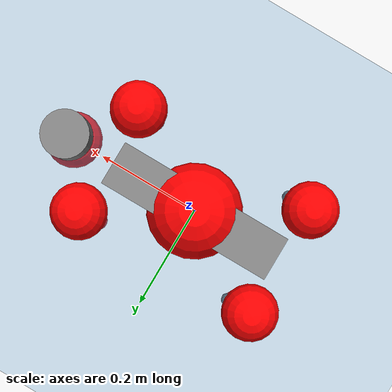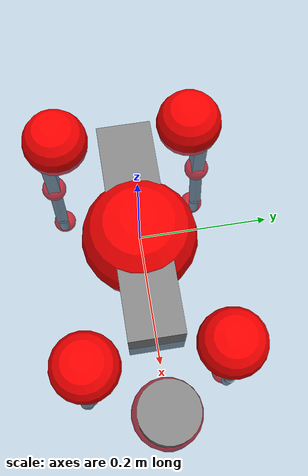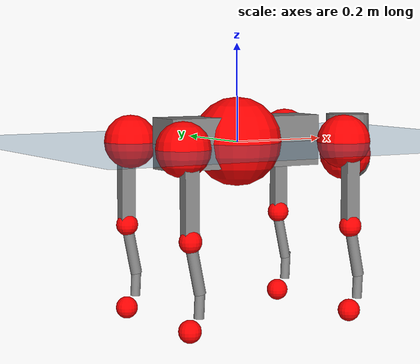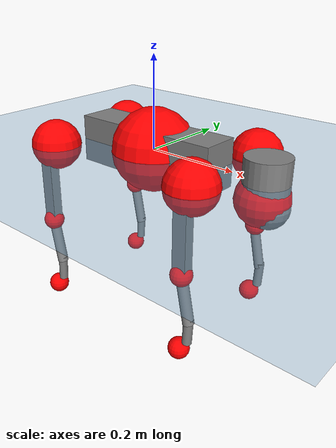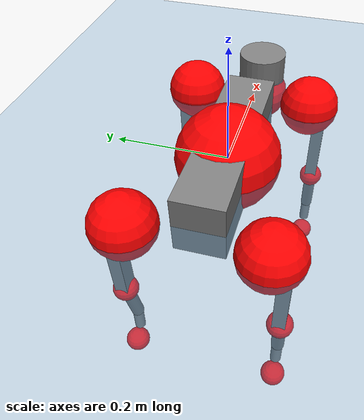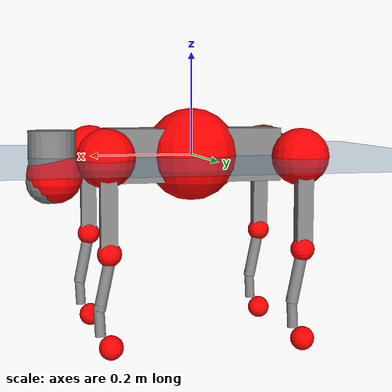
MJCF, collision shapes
<mujoco model="go2">
  <compiler angle="radian" assetdir="assets" balanceinertia="true" inertiafromgeom="false"/>

  <option timestep="0.005" density="1.2" viscosity="2e-05"/>

  <size nkey="1"/>

  <visual>
    <quality shadowsize="8192"/>
    <map shadowclip="0.5"/>
  </visual>

  <default>
    <default class="/">
      <geom contype="0" conaffinity="0" group="1" solref="-1000 -80"/>
      <site size="0.01 0.005 0.005" group="5"/>
      <general forcelimited="true" biastype="affine" gainprm="20" biasprm="0 -20 -0.5"/>
      <default class="go2">
        <joint armature="0.01" damping="0.01" frictionloss="0.2"/>
        <geom condim="1" margin="0.001"/>
        <default class="visual">
          <geom type="mesh" group="2"/>
        </default>
        <default class="collision">
          <geom group="3"/>
          <default class="foot">
            <geom size="0.022 0 0" condim="6" priority="1" friction="0.8 0.02 0.01" solimp="0.015 1 0.022"/>
          </default>
        </default>
        <default class="reward_collision_sphere">
          <geom group="5" rgba="1 0 0 1"/>
        </default>
      </default>
    </default>
  </default>

  <asset>
    <texture type="skybox" colorspace="auto" name="//unnamed_texture_0" builtin="gradient" rgb1="0.95 0.95 0.95" rgb2="0.95 0.95 0.95" width="100" height="600"/>
    <texture type="2d" colorspace="auto" name="texplane" builtin="checker" rgb1="0.345 0.575 0.748" rgb2="0.345 0.575 0.748" markrgb="1 1 1" width="512" height="512"/>
    <material name="MatPlane" class="/" texture="texplane" texuniform="true" texrepeat="2 2" specular="0.9"/>
    <material name="metal" class="/" rgba="0.9 0.95 0.95 1"/>
    <material name="black" class="/" rgba="0 0 0 1"/>
    <material name="white" class="/"/>
    <material name="gray" class="/" rgba="0.671705 0.692426 0.77427 1"/>
    <mesh name="base_0" class="/" file="base_0.obj"/>
    <mesh name="base_1" class="/" file="base_1.obj"/>
    <mesh name="base_2" class="/" file="base_2.obj"/>
    <mesh name="base_3" class="/" file="base_3.obj"/>
    <mesh name="base_4" class="/" file="base_4.obj"/>
    <mesh name="hip_0" class="/" file="hip_0.obj"/>
    <mesh name="hip_1" class="/" file="hip_1.obj"/>
    <mesh name="thigh_0" class="/" file="thigh_0.obj"/>
    <mesh name="thigh_1" class="/" file="thigh_1.obj"/>
    <mesh name="thigh_mirror_0" class="/" file="thigh_mirror_0.obj"/>
    <mesh name="thigh_mirror_1" class="/" file="thigh_mirror_1.obj"/>
    <mesh name="calf_0" class="/" file="calf_0.obj"/>
    <mesh name="calf_1" class="/" file="calf_1.obj"/>
    <mesh name="calf_mirror_0" class="/" file="calf_mirror_0.obj"/>
    <mesh name="calf_mirror_1" class="/" file="calf_mirror_1.obj"/>
    <mesh name="foot" class="/" file="foot.obj"/>
  </asset>

  <worldbody>
    <geom name="floor" class="/" size="100 100 0.125" type="plane" group="0" material="MatPlane"/>
    <light name="toplight_shadow" class="/" pos="0 0 5" dir="0.0990148 0.0990148 -0.990148" type="directional" ambient="0.04 0.04 0.04" diffuse="0.55 0.55 0.55" specular="0.12 0.12 0.12"/>
    <light name="toplight_fill" class="/" pos="0 0 5" dir="0.0990148 0.0990148 -0.990148" type="directional" castshadow="false" ambient="0.04 0.04 0.04" diffuse="0.3 0.3 0.3" specular="0.08 0.08 0.08"/>
    <body name="trunk" childclass="go2" pos="-0.00014265 2.38863e-05 0.00079406" quat="1 5.71236e-06 2.73637e-05 1.04716e-05">
      <inertial pos="0.0206454 6.65272e-05 -0.00508924" quat="-0.000802069 0.712999 -0.00147607 0.701163" mass="5.14395" diaginertia="0.0868954 0.0780221 0.00870401"/>
      <joint name="//unnamed_joint_0" type="free" armature="0" damping="0" frictionloss="0"/>
      <geom name="//unnamed_geom_1" class="visual" material="black" mesh="base_0"/>
      <geom name="//unnamed_geom_2" class="visual" material="black" mesh="base_1"/>
      <geom name="//unnamed_geom_3" class="visual" material="black" mesh="base_2"/>
      <geom name="//unnamed_geom_4" class="visual" material="white" mesh="base_3"/>
      <geom name="//unnamed_geom_5" class="visual" material="gray" mesh="base_4"/>
      <geom name="trunk_1" class="collision" size="0.171217 0.042554 0.051884" type="box"/>
      <geom name="trunk_2" class="collision" size="0.0455123 0.0409611" pos="0.273937 0 0.00813744" type="cylinder"/>
      <geom name="trunk_3" class="collision" size="0.0427816" pos="0.281626 0 -0.0488246"/>
      <geom name="//unnamed_geom_9" class="reward_collision_sphere" size="0.0910246"/>
      <geom name="//unnamed_geom_10" class="reward_collision_sphere" size="0.0546148" pos="0.269131 0 -0.0366185"/>
      <site name="imu" pos="-0.0288666 -0.00146154 0.0345441" size="0.00910246"/>
      <camera name="track" pos="0 -1.91163 0" quat="0.707107 0.707107 0 0" mode="trackcom"/>
      <camera name="ego_camera" pos="0.299888 0 0.0366185" quat="-0.5 -0.5 0.5 0.5"/>
      <body name="FL_hip" pos="0.186147 0.044315 0.00224491" quat="1 3.76543e-05 3.41153e-06 0.000110612">
        <inertial pos="-0.00492184 0.00261371 9.64073e-05" quat="0.493706 0.502402 0.505319 0.498497" mass="0.511286" diaginertia="0.000723772 0.000475532 0.00017171"/>
        <joint name="FL_hip_joint" pos="0 0 0" axis="0.999993 6.08207e-05 -0.00369118" range="-1.0446 1.03105" armature="0.00933808" damping="0.00168135" frictionloss="0.17774"/>
        <geom name="//unnamed_geom_11" class="visual" material="metal" mesh="hip_0"/>
        <geom name="//unnamed_geom_12" class="visual" material="gray" mesh="hip_1"/>
        <geom name="//unnamed_geom_13" class="collision" size="0.0418713 0.0182049" pos="0 0.0764651 0" quat="0.707107 0.707107 0 0" type="cylinder"/>
        <geom name="//unnamed_geom_14" class="reward_collision_sphere" size="0.0546148" pos="0 0.0669069 0"/>
        <body name="FL_thigh" pos="-0.00026638 0.0902396 0.00172131" quat="1 0.00028124 -7.54006e-05 -8.92677e-05">
          <inertial pos="-0.00443348 -0.0213061 -0.0263567" quat="0.828949 0.0853318 -0.0194708 0.552434" mass="0.855668" diaginertia="0.00484818 0.00464268 0.000310535"/>
          <joint name="FL_thigh_joint" pos="0 0 0" axis="0.000418981 1 0.000655315" stiffness="0.00292441" range="-1.57675 3.50004" armature="0.00929575" damping="0.00633934" frictionloss="0.181733"/>
          <geom name="//unnamed_geom_15" class="visual" material="metal" mesh="thigh_0"/>
          <geom name="//unnamed_geom_16" class="visual" material="gray" mesh="thigh_1"/>
          <geom name="//unnamed_geom_17" class="collision" size="0.0969412 0.0111505 0.0154742" pos="0 0 -0.0866637" quat="0.707107 0 0.707107 0" type="box"/>
          <body name="FL_calf" pos="-0.0013711 -0.000961718 -0.174066" quat="1 -5.33146e-05 2.25446e-05 -0.000297068">
            <inertial pos="0.00578121 -0.000297169 -0.114735" quat="0.711478 0.000319263 -0.00393686 0.702698" mass="0.184602" diaginertia="0.00123694 0.00116932 1.90543e-05"/>
            <joint name="FL_calf_joint" pos="0 0 0" axis="0.00513983 0.999979 0.00388975" stiffness="0.00252939" range="-2.70672 -0.845154" armature="0.00866716" damping="0.00325314" frictionloss="0.174004"/>
            <geom name="//unnamed_geom_18" class="visual" material="gray" mesh="calf_0"/>
            <geom name="//unnamed_geom_19" class="visual" material="black" mesh="calf_1"/>
            <geom name="FL_calf0" class="collision" size="0.010923 0.0546148" pos="0.00768945 0 -0.0488246" quat="0.994493 0 -0.104807 0" type="cylinder"/>
            <geom name="//unnamed_geom_21" class="collision" size="0.0100127 0.029583" pos="0.0192236 0 -0.120434" quat="0.999688 0 0.0249974 0" type="cylinder"/>
            <geom name="//unnamed_geom_22" class="visual" pos="0 0 -0.173327" quat="1 0 0 0" material="black" mesh="foot"/>
            <geom name="FL_foot" class="foot" size="0.0176375" pos="-0.00192236 0 -0.173327"/>
            <geom name="//unnamed_geom_24" class="reward_collision_sphere" size="0.0227562"/>
            <geom name="//unnamed_geom_25" class="reward_collision_sphere" size="0.0227562" pos="-0.00192236 0 -0.173327"/>
            <site name="FL_foot" class="foot" pos="-0.00192236 0 -0.173327" size="0.00910246"/>
          </body>
        </body>
      </body>
      <body name="FR_hip" pos="0.187362 -0.0436215 8.76633e-05" quat="1 1.66991e-05 -1.77408e-05 1.42624e-06">
        <inertial pos="-0.00502881 -0.00169169 -0.000526727" quat="0.498612 0.505278 0.498519 0.497553" mass="0.50309" diaginertia="0.000722585 0.000464734 0.000169482"/>
        <joint name="FR_hip_joint" pos="0 0 0" axis="0.999997 -0.00161509 -0.00162218" stiffness="0.00280059" range="-1.0521 1.05533" armature="0.00914325" damping="0.0144534" frictionloss="0.181538"/>
        <geom name="//unnamed_geom_26" class="visual" pos="0 1.23765e-09 5.30853e-08" quat="4.63268e-05 1 0 0" material="metal" mesh="hip_0"/>
        <geom name="//unnamed_geom_27" class="visual" pos="0 2.00638e-09 -1.313e-07" quat="4.63268e-05 1 0 0" material="gray" mesh="hip_1"/>
        <geom name="//unnamed_geom_28" class="collision" size="0.0418713 0.0182049" pos="0 -0.0764651 0" quat="0.707107 0.707107 0 0" type="cylinder"/>
        <geom name="//unnamed_geom_29" class="reward_collision_sphere" size="0.0546148" pos="0 -0.0669069 0"/>
        <body name="FR_thigh" pos="0.000988909 -0.0906978 0.00101942" quat="1 -1.66844e-05 -0.00023849 -9.70023e-05">
          <inertial pos="-0.00344994 0.0217268 -0.0263843" quat="0.551476 -0.0203411 0.0851671 0.829583" mass="0.870263" diaginertia="0.00490964 0.00464104 0.000313014"/>
          <joint name="FR_thigh_joint" pos="0 0 0" axis="-6.67566e-05 -1 0.000130536" range="-3.47592 1.55394" armature="0.00913743" damping="0.00985414" frictionloss="0.193299"/>
          <geom name="//unnamed_geom_30" class="visual" material="metal" mesh="thigh_mirror_0"/>
          <geom name="//unnamed_geom_31" class="visual" material="gray" mesh="thigh_mirror_1"/>
          <geom name="//unnamed_geom_32" class="collision" size="0.0969412 0.0111505 0.0154742" pos="0 0 -0.0866637" quat="0.707107 0 0.707107 0" type="box"/>
          <body name="FR_calf" pos="-6.73753e-05 -0.000677979 -0.173008" quat="1 -5.24502e-05 7.02461e-05 8.57062e-05">
            <inertial pos="0.00599599 0.00106462 -0.115063" quat="0.70129 -0.00765947 0.00040509 0.712835" mass="0.180908" diaginertia="0.00120936 0.00117203 1.886e-05"/>
            <joint name="FR_calf_joint" pos="0 0 0" axis="0.00218346 -0.999997 0.00130817" range="0.854197 2.70546" armature="0.00909491" damping="0.00977541" frictionloss="0.176429"/>
            <geom name="//unnamed_geom_33" class="visual" material="gray" mesh="calf_mirror_0"/>
            <geom name="//unnamed_geom_34" class="visual" material="black" mesh="calf_mirror_1"/>
            <geom name="FR_calf0" class="collision" size="0.0118332 0.0546148" pos="0.00961181 0 -0.0488246" quat="0.995004 0 -0.0998334 0" type="cylinder"/>
            <geom name="//unnamed_geom_36" class="collision" size="0.0100127 0.029583" pos="0.0192236 0 -0.120434" quat="0.999688 0 0.0249974 0" type="cylinder"/>
            <geom name="//unnamed_geom_37" class="visual" pos="0 0 -0.173327" quat="1 0 0 0" material="black" mesh="foot"/>
            <geom name="FR_foot" class="foot" size="0.0203173" pos="-0.00192236 0 -0.173327"/>
            <geom name="//unnamed_geom_39" class="reward_collision_sphere" size="0.0227562"/>
            <geom name="//unnamed_geom_40" class="reward_collision_sphere" size="0.0227562" pos="-0.00192236 0 -0.173327"/>
            <site name="FR_foot" class="foot" pos="-0.00192236 0 -0.173327" size="0.00910246"/>
          </body>
        </body>
      </body>
      <body name="RL_hip" pos="-0.186745 0.0439725 -0.000363048" quat="1 4.58225e-05 0.000171117 -5.47419e-05">
        <inertial pos="0.00453443 0.0025197 -0.000248835" quat="0.503643 0.501564 0.494623 0.500126" mass="0.508413" diaginertia="0.000728095 0.000480534 0.000171595"/>
        <joint name="RL_hip_joint" pos="0 0 0" axis="-0.999791 -0.0204532 -0.00062283" stiffness="0.000269301" range="-1.05306 1.02186" armature="0.0090414" damping="0.0155419" frictionloss="0.184137"/>
        <geom name="//unnamed_geom_41" class="visual" pos="-1.28441e-09 0 -2.51774e-07" quat="4.63268e-05 0 1 0" material="metal" mesh="hip_0"/>
        <geom name="//unnamed_geom_42" class="visual" pos="-2.08218e-09 0 -2.23287e-07" quat="4.63268e-05 0 1 0" material="gray" mesh="hip_1"/>
        <geom name="//unnamed_geom_43" class="collision" size="0.0418713 0.0182049" pos="0 0.0764651 0" quat="0.707107 0.707107 0 0" type="cylinder"/>
        <geom name="//unnamed_geom_44" class="reward_collision_sphere" size="0.0546148" pos="0 0.0669069 0"/>
        <body name="RL_thigh" pos="0.000890454 0.0899889 -0.000966041" quat="1 1.06163e-05 7.16958e-07 8.59035e-06">
          <inertial pos="-0.00342946 -0.0214625 -0.0268965" quat="0.829798 0.0853978 -0.0193409 0.551152" mass="0.868386" diaginertia="0.00488343 0.00471538 0.000314176"/>
          <joint name="RL_thigh_joint" pos="0 0 0" axis="-0.00243914 0.999997 -0.000685186" range="-0.519736 4.53467" armature="0.00947598" damping="0.0115191" frictionloss="0.180272"/>
          <geom name="//unnamed_geom_45" class="visual" material="metal" mesh="thigh_0"/>
          <geom name="//unnamed_geom_46" class="visual" material="gray" mesh="thigh_1"/>
          <geom name="//unnamed_geom_47" class="collision" size="0.0969412 0.0111505 0.0154742" pos="0 0 -0.0866637" quat="0.707107 0 0.707107 0" type="box"/>
          <body name="RL_calf" pos="0.00122206 0.000355898 -0.173085" quat="1 3.30365e-05 0.000277658 1.81776e-05">
            <inertial pos="0.00605042 -0.000575252 -0.11474" quat="0.708161 -0.00280769 -0.00301545 0.706039" mass="0.182226" diaginertia="0.00121844 0.00117031 1.8757e-05"/>
            <joint name="RL_calf_joint" pos="0 0 0" axis="-0.000978416 0.999934 -0.0114743" stiffness="0.00079081" range="-2.7185 -0.835392" armature="0.00934974" damping="0.00293202" frictionloss="0.174262"/>
            <geom name="//unnamed_geom_48" class="visual" material="gray" mesh="calf_0"/>
            <geom name="//unnamed_geom_49" class="visual" material="black" mesh="calf_1"/>
            <geom name="RL_calf0" class="collision" size="0.0118332 0.0546148" pos="0.00961181 0 -0.0488246" quat="0.995004 0 -0.0998334 0" type="cylinder"/>
            <geom name="//unnamed_geom_51" class="collision" size="0.0100127 0.029583" pos="0.0192236 0 -0.120434" quat="0.999688 0 0.0249974 0" type="cylinder"/>
            <geom name="//unnamed_geom_52" class="visual" pos="0 0 -0.173327" quat="1 0 0 0" material="black" mesh="foot"/>
            <geom name="RL_foot" class="foot" size="0.0182153" pos="-0.00192236 0 -0.173327"/>
            <geom name="//unnamed_geom_54" class="reward_collision_sphere" size="0.0227562"/>
            <geom name="//unnamed_geom_55" class="reward_collision_sphere" size="0.0227562" pos="-0.00192236 0 -0.173327"/>
            <site name="RL_foot" class="foot" pos="-0.00192236 0 -0.173327" size="0.00910246"/>
          </body>
        </body>
      </body>
      <body name="RR_hip" pos="-0.186058 -0.0457115 -0.00179124" quat="1 0.000115391 0.000133897 9.3038e-05">
        <inertial pos="0.00474264 -0.00192125 -9.44487e-05" quat="0.500149 0.49605 0.49797 0.505778" mass="0.516739" diaginertia="0.000733176 0.00048001 0.000171588"/>
        <joint name="RR_hip_joint" pos="0 0 0" axis="-0.999999 0.00100638 -0.000648628" stiffness="0.00254998" range="-1.0419 1.06415" armature="0.00911442" damping="0.00633614" frictionloss="0.180889"/>
        <geom name="//unnamed_geom_56" class="visual" pos="1.28422e-09 1.23765e-09 -3.04859e-07" quat="2.14617e-09 4.63268e-05 4.63268e-05 -1" material="metal" mesh="hip_0"/>
        <geom name="//unnamed_geom_57" class="visual" pos="2.08264e-09 2.00638e-09 -9.19872e-08" quat="2.14617e-09 4.63268e-05 4.63268e-05 -1" material="gray" mesh="hip_1"/>
        <geom name="//unnamed_geom_58" class="collision" size="0.0418713 0.0182049" pos="0 -0.0764651 0" quat="0.707107 0.707107 0 0" type="cylinder"/>
        <geom name="//unnamed_geom_59" class="reward_collision_sphere" size="0.0546148" pos="0 -0.0669069 0"/>
        <body name="RR_thigh" pos="0.000353788 -0.0911 -0.000762858" quat="1 -0.000204131 -0.000180934 0.000205285">
          <inertial pos="-0.0042263 0.0209765 -0.0261778" quat="0.551486 -0.0203346 0.0845845 0.829636" mass="0.850012" diaginertia="0.00482627 0.00458801 0.000311295"/>
          <joint name="RR_thigh_joint" pos="0 0 0" axis="0.000599703 -0.999983 -0.00580253" range="-4.54343 0.52136" armature="0.00930933" damping="0.0171497" frictionloss="0.182125"/>
          <geom name="//unnamed_geom_60" class="visual" material="metal" mesh="thigh_mirror_0"/>
          <geom name="//unnamed_geom_61" class="visual" material="gray" mesh="thigh_mirror_1"/>
          <geom name="//unnamed_geom_62" class="collision" size="0.0969412 0.0111505 0.0154742" pos="0 0 -0.0866637" quat="0.707107 0 0.707107 0" type="box"/>
          <body name="RR_calf" pos="0.000498126 -0.00116385 -0.174063" quat="1 -0.000454822 -0.000139929 -0.000116044">
            <inertial pos="0.00633619 0.000674676 -0.115593" quat="0.703421 -0.00339041 0.00132169 0.710764" mass="0.181765" diaginertia="0.00123267 0.00115962 1.88516e-05"/>
            <joint name="RR_calf_joint" pos="0 0 0" axis="-0.00194302 -0.999992 -0.00341681" range="0.82815 2.72336" armature="0.00880547" damping="0.00763632" frictionloss="0.182059"/>
            <geom name="//unnamed_geom_63" class="visual" material="gray" mesh="calf_mirror_0"/>
            <geom name="//unnamed_geom_64" class="visual" material="black" mesh="calf_mirror_1"/>
            <geom name="RR_calf0" class="collision" size="0.0118332 0.0546148" pos="0.00961181 0 -0.0488246" quat="0.995004 0 -0.0998334 0" type="cylinder"/>
            <geom name="//unnamed_geom_66" class="collision" size="0.0100127 0.029583" pos="0.0192236 0 -0.120434" quat="0.999688 0 0.0249974 0" type="cylinder"/>
            <geom name="//unnamed_geom_67" class="visual" pos="0 0 -0.173327" quat="1 0 0 0" material="black" mesh="foot"/>
            <geom name="RR_foot" class="foot" size="0.021968" pos="-0.00192236 0 -0.173327"/>
            <geom name="//unnamed_geom_69" class="reward_collision_sphere" size="0.0227562"/>
            <geom name="//unnamed_geom_70" class="reward_collision_sphere" size="0.0227562" pos="-0.00192236 0 -0.173327"/>
            <site name="RR_foot" class="foot" pos="-0.00192236 0 -0.173327" size="0.00910246"/>
          </body>
        </body>
      </body>
    </body>
  </worldbody>

  <contact>
    <pair class="/" geom1="floor" geom2="FL_foot" name="//unnamed_contact_0"/>
    <pair class="/" geom1="floor" geom2="FR_foot" name="//unnamed_contact_1"/>
    <pair class="/" geom1="floor" geom2="RL_foot" name="//unnamed_contact_2"/>
    <pair class="/" geom1="floor" geom2="RR_foot" name="//unnamed_contact_3"/>
  </contact>

  <actuator>
    <general name="FL_hip" class="/" joint="FL_hip_joint" forcerange="-21.2074 21.2074" gainprm="18.5056" biasprm="0 -18.5056 -0.455074"/>
    <general name="FL_thigh" class="/" joint="FL_thigh_joint" forcerange="-22.3684 22.3684" gainprm="18.5056" biasprm="0 -18.5056 -0.455074"/>
    <general name="FL_calf" class="/" joint="FL_calf_joint" forcerange="-40.5569 40.5569" gainprm="18.5056" biasprm="0 -18.5056 -0.455074"/>
    <general name="FR_hip" class="/" joint="FR_hip_joint" forcerange="-22.2722 22.2722" gainprm="18.5056" biasprm="0 -18.5056 -0.455074"/>
    <general name="FR_thigh" class="/" joint="FR_thigh_joint" forcerange="-20.9307 20.9307" gainprm="18.5056" biasprm="0 -18.5056 -0.455074"/>
    <general name="FR_calf" class="/" joint="FR_calf_joint" forcerange="-41.2589 41.2589" gainprm="18.5056" biasprm="0 -18.5056 -0.455074"/>
    <general name="RL_hip" class="/" joint="RL_hip_joint" forcerange="-21.5725 21.5725" gainprm="18.5056" biasprm="0 -18.5056 -0.455074"/>
    <general name="RL_thigh" class="/" joint="RL_thigh_joint" forcerange="-21.5532 21.5532" gainprm="18.5056" biasprm="0 -18.5056 -0.455074"/>
    <general name="RL_calf" class="/" joint="RL_calf_joint" forcerange="-40.5673 40.5673" gainprm="18.5056" biasprm="0 -18.5056 -0.455074"/>
    <general name="RR_hip" class="/" joint="RR_hip_joint" forcerange="-21.7259 21.7259" gainprm="18.5056" biasprm="0 -18.5056 -0.455074"/>
    <general name="RR_thigh" class="/" joint="RR_thigh_joint" forcerange="-21.0749 21.0749" gainprm="18.5056" biasprm="0 -18.5056 -0.455074"/>
    <general name="RR_calf" class="/" joint="RR_calf_joint" forcerange="-41.3926 41.3926" gainprm="18.5056" biasprm="0 -18.5056 -0.455074"/>
  </actuator>

  <sensor>
    <gyro site="imu" name="imu_angular_velocity"/>
    <velocimeter site="imu" name="imu_linear_velocity"/>
    <framelinvel objtype="site" objname="FL_foot" name="FL_foot_global_linear_velocity"/>
    <framelinvel objtype="site" objname="FR_foot" name="FR_foot_global_linear_velocity"/>
    <framelinvel objtype="site" objname="RL_foot" name="RL_foot_global_linear_velocity"/>
    <framelinvel objtype="site" objname="RR_foot" name="RR_foot_global_linear_velocity"/>
  </sensor>

  <keyframe>
    <key name="home" qpos="0 0 0.325 1 0 0 0 0.1 0.8 -1.5 -0.1 -0.8 1.5 -0.1 0.8 -1.5 0.1 -0.8 1.5"/>
  </keyframe>
</mujoco>
